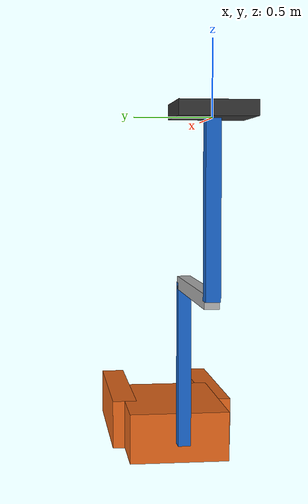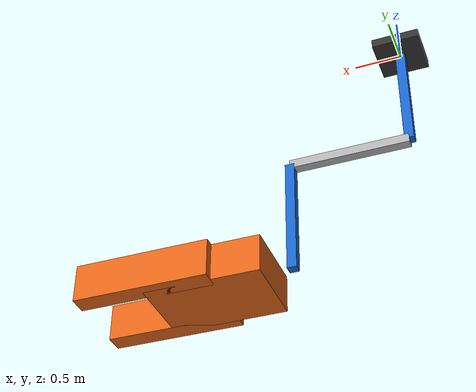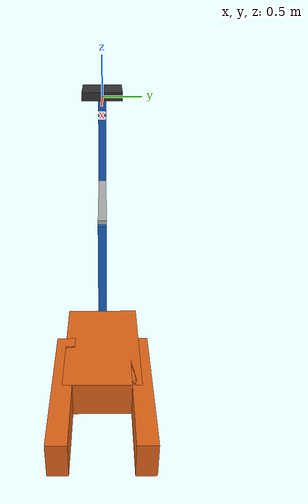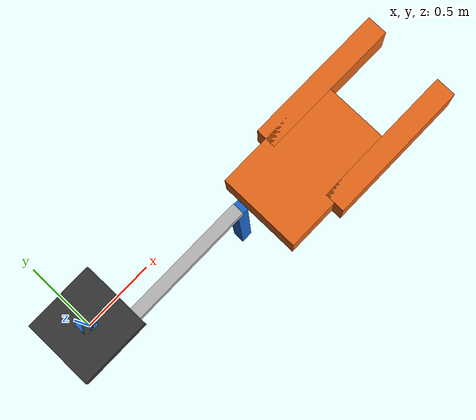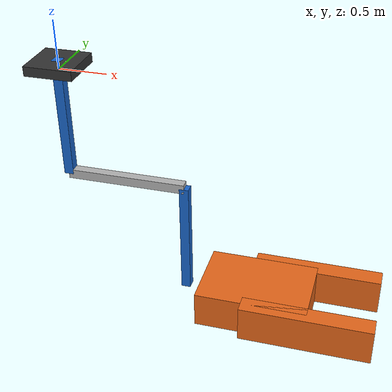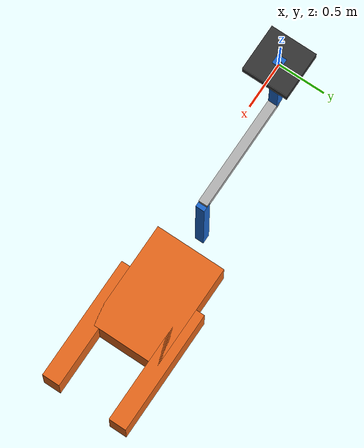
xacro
<?xml version="1.0"?>
<robot xmlns:xacro="http://www.ros.org/wiki/xacro" name="four_dof_arm">
  <!-- Robot geometry placeholders.
       Swap mesh filenames to your exported SLDPRT->(dae/stl) paths. -->

  <xacro:include filename="$(find arm_description)/urdf/ros2_control.xacro"/>

  <xacro:arg name="controllers_file" default="$(find arm_config)/config/ros2_controllers.yaml"/>
  <xacro:property name="mesh_dir" value="package://arm_description/meshes"/>
  <xacro:property name="controllers_file_path" value="$(arg controllers_file)"/>

  <!-- Basic link dimensions (scaled 10x) -->
  <xacro:property name="link1_length" value="1.27"/>
  <xacro:property name="link2_length" value="1.27"/>
  <xacro:property name="link3_length" value="1.27"/>
  <!-- Convert millimeter-based meshes to meters and scale 10x -->
  <xacro:property name="mesh_scale" value="0.01 0.01 0.01"/>
  <!-- Placeholder meshes are already in metric scale -->
  <xacro:property name="placeholder_scale" value="1.0 1.0 1.0"/>

  <xacro:macro name="default_inertial" params="mass">
    <inertial>
      <origin xyz="0 0 0" rpy="0 0 0"/>
      <mass value="${mass}"/>
      <inertia ixx="0.001" ixy="0.0" ixz="0.0" iyy="0.001" iyz="0.0" izz="0.001"/>
    </inertial>
  </xacro:macro>

  <!-- Base -->
  <link name="base_link">
    <visual>
      <origin xyz="0 0 0.05" rpy="0 0 0"/>
      <geometry>
        <!-- Visible base to anchor the first joint -->
        <box size="0.50 0.50 0.10"/>
      </geometry>
      <material name="dark_grey">
        <color rgba="0.2 0.2 0.2 1.0"/>
      </material>
    </visual>
    <collision>
      <origin xyz="0 0 0.05" rpy="0 0 0"/>
      <geometry>
        <box size="0.50 0.50 0.10"/>
      </geometry>
    </collision>
    <xacro:default_inertial mass="5.0"/>
  </link>

  <joint name="joint1" type="revolute">
    <origin xyz="0 0 0.10" rpy="0 0 0"/> <!-- Place joint1 above base top; links hang below -->
    <axis xyz="0 0 -1"/> <!-- roll link1 about its long axis -->
    <parent link="base_link"/>
    <child link="link1"/>
    <limit lower="-3.14" upper="3.14" effort="50" velocity="1.5"/>
    <dynamics damping="0.1" friction="0.0"/>
  </joint>

  <link name="link1">
    <visual>
      <origin xyz="0 0 -0.635" rpy="0 0 0"/>
      <geometry>
        <box size="0.10 0.10 1.27"/>
      </geometry>
      <material name="blue">
        <color rgba="0.1 0.4 0.8 1.0"/>
      </material>
    </visual>
    <collision>
      <origin xyz="0 0 0" rpy="0 0 0"/>
      <geometry>
        <sphere radius="0.01"/>
      </geometry>
    </collision>
    <xacro:default_inertial mass="3.0"/>
  </link>

  <joint name="joint2" type="revolute">
    <origin xyz="0 0 -${link1_length}" rpy="0 0 0"/> <!-- end of link1 -->
    <axis xyz="1 0 0"/> <!-- roll link2 about its long axis (+X) -->
    <parent link="link1"/>
    <child link="link2"/>
    <limit lower="-2.5" upper="2.5" effort="40" velocity="1.5"/>
    <dynamics damping="0.1" friction="0.0"/>
  </joint>

  <link name="link2">
    <visual>
      <origin xyz="0.635 0 0" rpy="0 0 0"/>
      <geometry>
        <box size="1.27 0.10 0.10"/>
      </geometry>
      <material name="light_grey">
        <color rgba="0.7 0.7 0.7 1.0"/>
      </material>
    </visual>
    <collision>
      <origin xyz="0 0 0" rpy="0 0 0"/>
      <geometry>
        <sphere radius="0.01"/>
      </geometry>
    </collision>
    <xacro:default_inertial mass="2.0"/>
  </link>

  <joint name="joint3" type="revolute">
    <origin xyz="${link2_length} 0 0" rpy="0 0 0"/> <!-- end of link2 -->
    <axis xyz="0 0 -1"/> <!-- roll link3 about its long axis (-Z) -->
    <parent link="link2"/>
    <child link="link3"/>
    <limit lower="-2.5" upper="2.5" effort="30" velocity="2.0"/>
    <dynamics damping="0.1" friction="0.0"/>
  </joint>

  <link name="link3">
    <visual>
      <origin xyz="0 0 -0.635" rpy="0 0 0"/>
      <geometry>
        <box size="0.10 0.10 1.27"/>
      </geometry>
      <material name="blue">
        <color rgba="0.1 0.4 0.8 1.0"/>
      </material>
    </visual>
    <collision>
      <origin xyz="0 0 0" rpy="0 0 0"/>
      <geometry>
        <sphere radius="0.01"/>
      </geometry>
    </collision>
    <xacro:default_inertial mass="1.5"/>
  </link>

  <joint name="joint4" type="revolute">
    <origin xyz="0 0 -${link3_length}" rpy="0 0 0"/>
    <axis xyz="1 0 0"/>
    <parent link="link3"/>
    <child link="tool0"/>
    <limit lower="-3.14" upper="3.14" effort="20" velocity="2.5"/>
    <dynamics damping="0.05" friction="0.0"/>
  </joint>

  <link name="tool0">
    <visual>
      <origin xyz="0.8 0 0" rpy="0 0 0"/>
      <geometry>
        <box size="1.2 0.8 0.4"/>
      </geometry>
      <material name="orange">
        <color rgba="0.9 0.4 0.1 1.0"/>
      </material>
    </visual>
    <visual>
      <origin xyz="1.4 0.4 0" rpy="0 0 0"/>
      <geometry>
        <box size="1.4 0.2 0.4"/>
      </geometry>
      <material name="orange">
        <color rgba="0.9 0.4 0.1 1.0"/>
      </material>
    </visual>
    <visual>
      <origin xyz="1.4 -0.4 0" rpy="0 0 0"/>
      <geometry>
        <box size="1.4 0.2 0.4"/>
      </geometry>
      <material name="orange">
        <color rgba="0.9 0.4 0.1 1.0"/>
      </material>
    </visual>
    <xacro:default_inertial mass="0.5"/>
  </link>

  <xacro:ros2_control_block controllers_file="${controllers_file_path}"/>
</robot>
